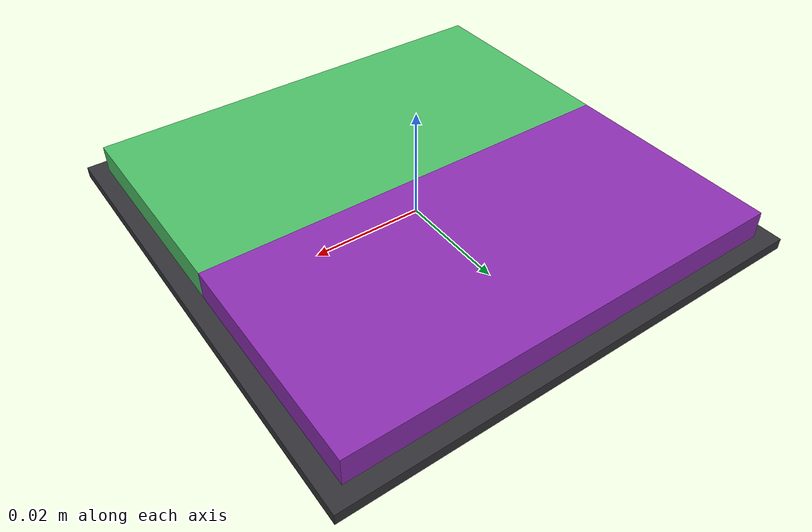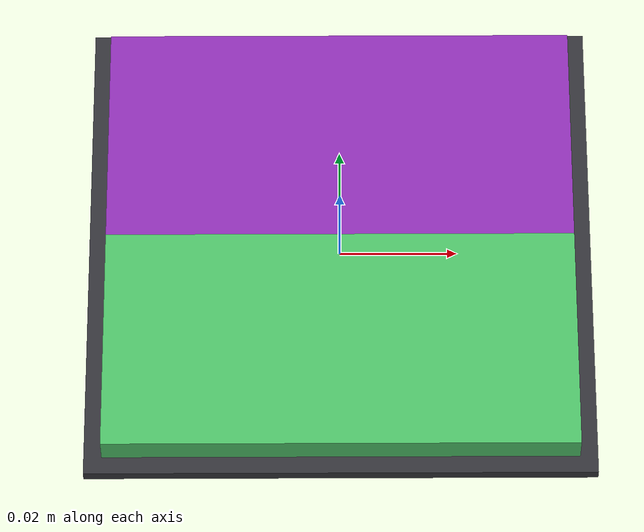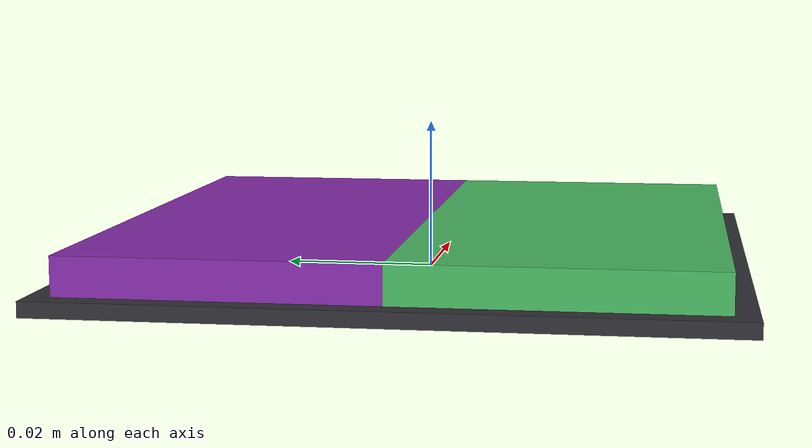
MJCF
<mujoco model="Switch_Quantity1_42">
  <asset>
    <material name="Switch_Quantity1_42_bezel" rgba="0.20 0.20 0.22 1" specular="0.8" shininess="0.85"/>
    <material name="Switch_Quantity1_42_green" rgba="0.30 0.75 0.40 1" specular="0.8" shininess="0.85"/>
    <material name="Switch_Quantity1_42_purple" rgba="0.55 0.18 0.70 1" specular="0.8" shininess="0.85"/>
  </asset>
  <worldbody>
    <body name="Switch_Quantity1_42">
      <geom name="Switch_Quantity1_42_bezel" type="box"
            pos="0 0 0.001" size="0.043 0.043 0.001"
            material="Switch_Quantity1_42_bezel"/>
      <geom name="Switch_Quantity1_42_purple" type="box"
            pos="0 0.02 0.0035" size="0.04 0.02 0.0035"
            material="Switch_Quantity1_42_purple"/>
      <geom name="Switch_Quantity1_42_green" type="box"
            pos="0 -0.02 0.0035" size="0.04 0.02 0.0035"
            material="Switch_Quantity1_42_green"/>
    </body>
  </worldbody>
</mujoco>
